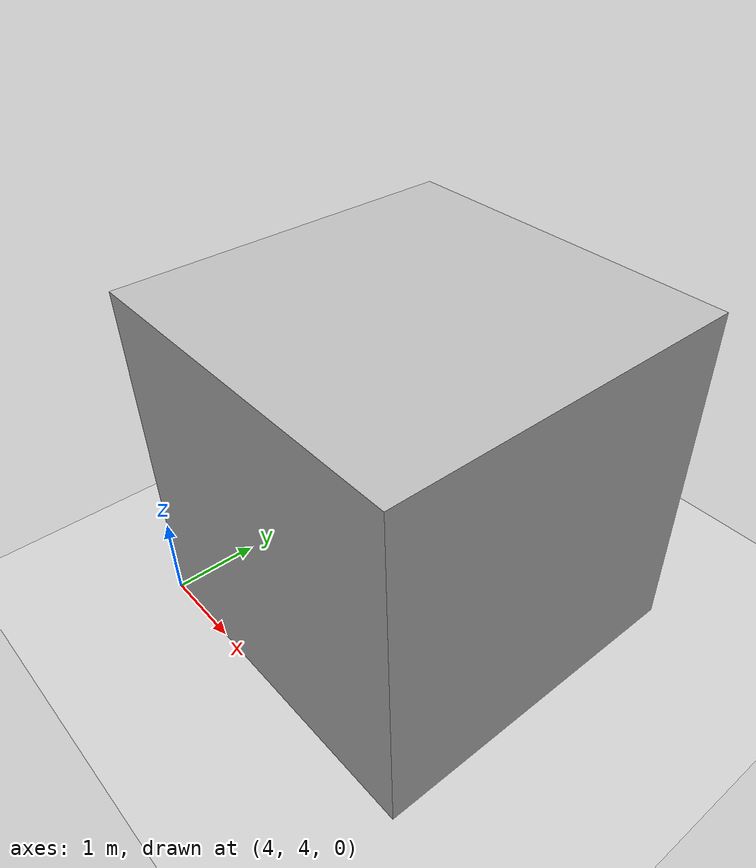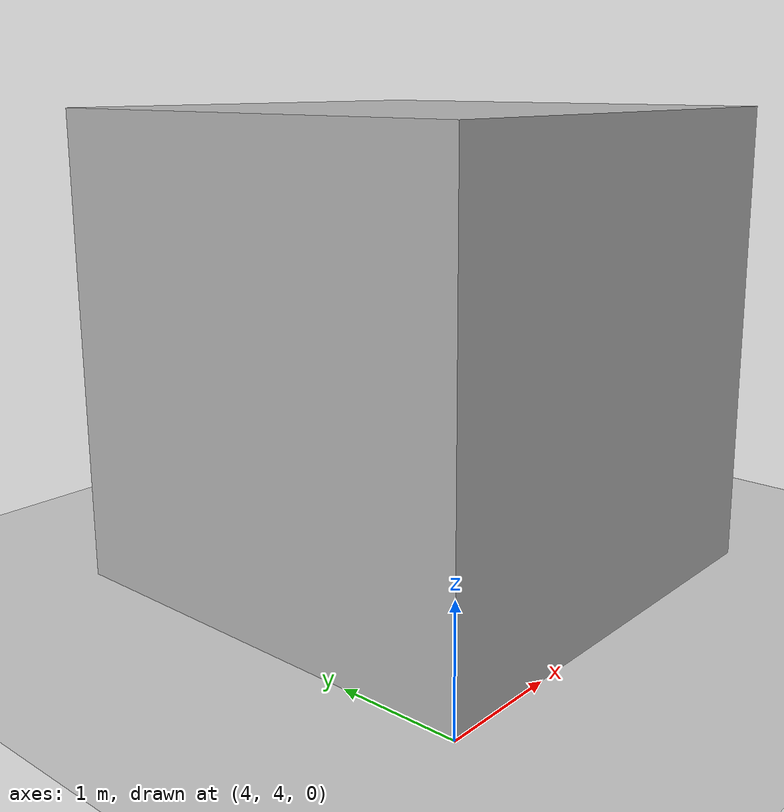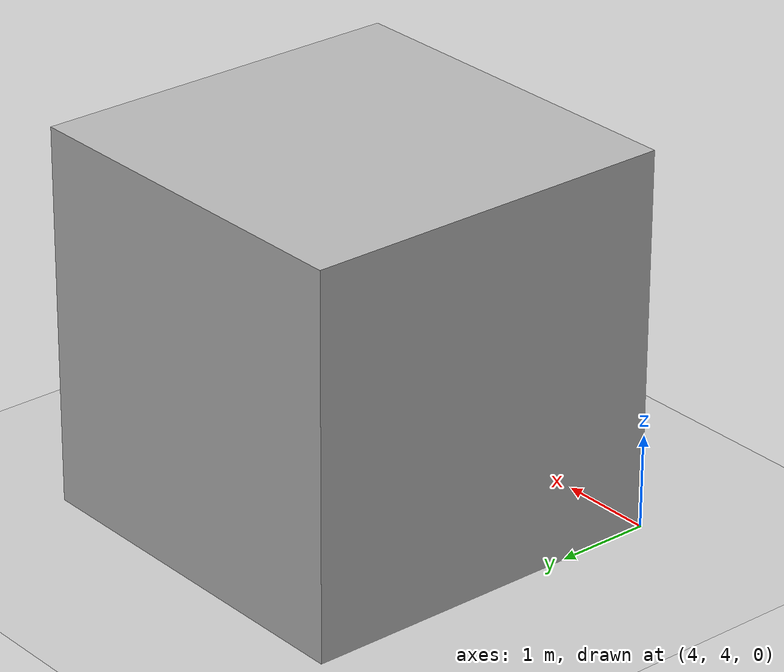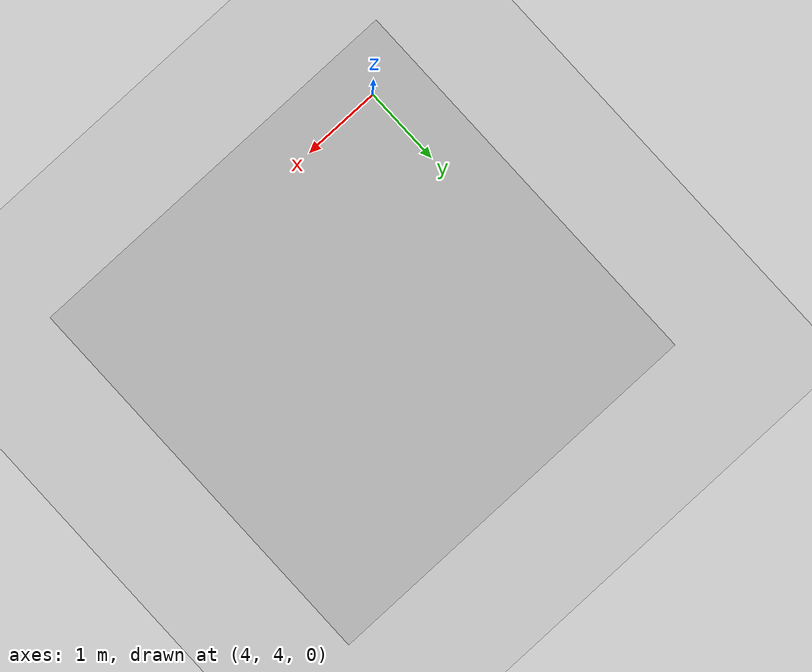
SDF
<sdf version="1.8">

<world name="drone_training_world">

<include>
<uri>model://ground_plane</uri>
</include>

<include>
<uri>model://sun</uri>
</include>

<model name="warehouse">

<pose>6 6 2 0 0 0</pose>

<link name="link">

<collision name="collision">

<geometry>
<box>
<size>4 4 4</size>
</box>
</geometry>

</collision>

<visual name="visual">

<geometry>
<box>
<size>4 4 4</size>
</box>
</geometry>

</visual>

</link>

</model>

</world>

</sdf>
